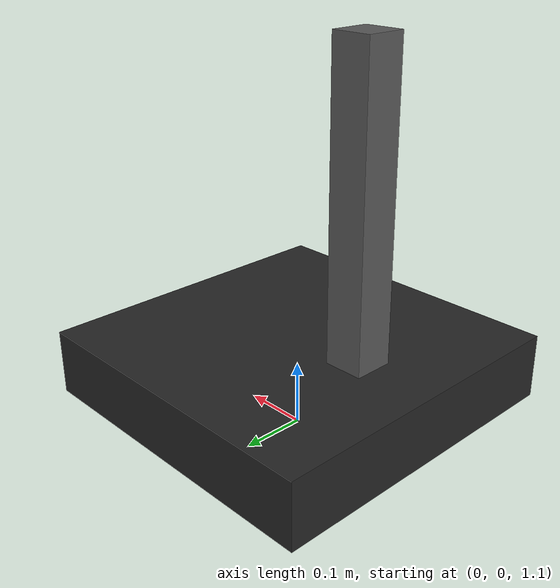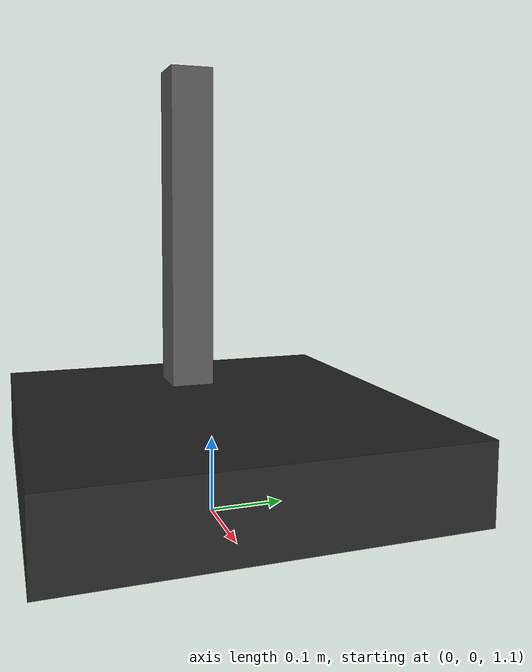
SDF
<?xml version="1.0" ?>
<sdf version="1.9">
  <model name="depth_camera_carrier">
    <static>true</static>
    <pose>0 0 0 0 0 0</pose>

    <link name="base_link">
      <pose>0 0 1.2 0 0 0</pose>

      <collision name="base_collision">
        <geometry>
          <box>
            <size>0.5 0.5 0.1</size>
          </box>
        </geometry>
      </collision>

      <visual name="base_visual">
        <geometry>
          <box>
            <size>0.5 0.5 0.1</size>
          </box>
        </geometry>
        <material>
          <ambient>0.15 0.15 0.15 1</ambient>
          <diffuse>0.15 0.15 0.15 1</diffuse>
        </material>
      </visual>

      <visual name="mast_visual">
        <pose>-0.12 0 0.25 0 0 0</pose>
        <geometry>
          <box>
            <size>0.06 0.06 0.5</size>
          </box>
        </geometry>
        <material>
          <ambient>0.35 0.35 0.35 1</ambient>
          <diffuse>0.35 0.35 0.35 1</diffuse>
        </material>
      </visual>

      <sensor name="rgbd_camera" type="rgbd_camera">
        <pose>0.18 0 0.06 0 0 0</pose>
        <camera>
          <horizontal_fov>1.047</horizontal_fov>
          <image>
            <width>640</width>
            <height>480</height>
            <format>R8G8B8</format>
          </image>
          <clip>
            <near>0.2</near>
            <far>12.0</far>
          </clip>
        </camera>
        <always_on>true</always_on>
        <update_rate>15</update_rate>
        <visualize>true</visualize>
        <topic>rgbd_camera</topic>
        <enable_metrics>true</enable_metrics>
      </sensor>
    </link>
  </model>
</sdf>
